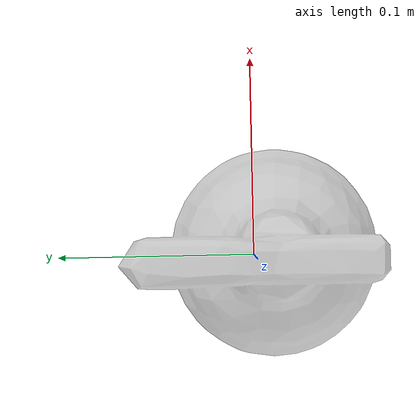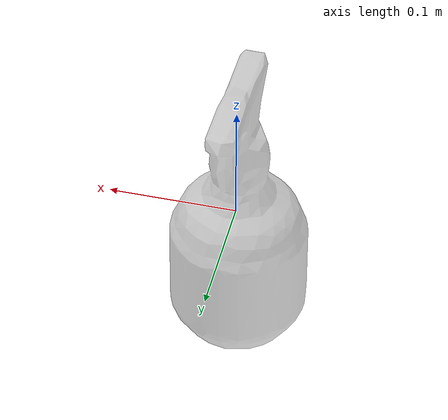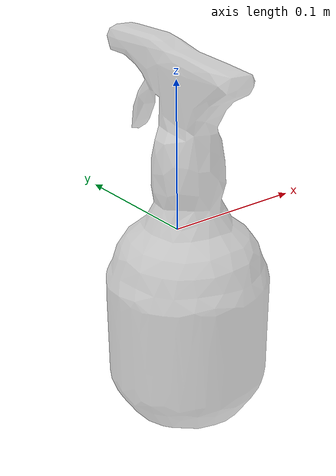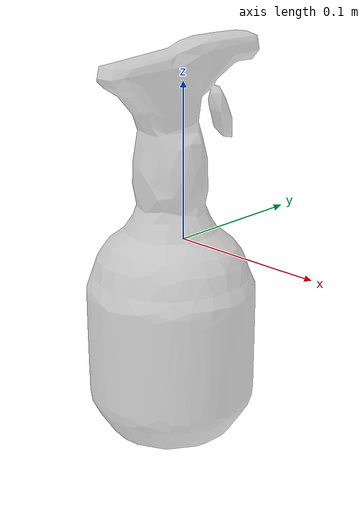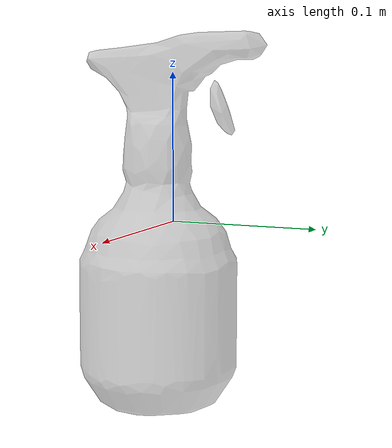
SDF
<?xml version='1.0'?>
<sdf version='1.4'>
  <model name="object">
    <link name='link'>
      <pose>0.0 0 0 0 0 0</pose>
      <inertial>
        <mass>0.75</mass>
        <inertia>
          <ixx>0.00290660713</ixx>
          <ixy>0</ixy>
          <ixz>0</ixz>
          <iyy>0.00286918918</iyy>
          <iyz>-0.00006919605</iyz>
          <izz>0.0009134465</izz>
        </inertia>
      </inertial>
      <collision name='c_bp_022'>
        <geometry>
          <mesh>
            <scale>1 1 1</scale>
            <uri>model://spray_bottle_poisson_001/mesh/spray_bottle_poisson_001.dae</uri>
          </mesh>
        </geometry>
        <surface>
          <contact>
            <ode>
              <kp>1000000</kp>
              <kd>100</kd>
              <max_vel>1000.0</max_vel>
              <min_depth>0.0</min_depth>
            </ode>
          </contact>
        </surface>
      </collision>

      <visual name='v_bp_022'>
        <geometry>
          <mesh>
            <scale>1 1 1</scale>
            <uri>model://spray_bottle_poisson_001/mesh/spray_bottle_poisson_001.dae</uri>
          </mesh>
        </geometry>
        <material>
          <script>
            <name>Gazebo/GreyTransparent</name>
            <uri>file://media/materials/scripts/gazebo.material</uri>
          </script>
        </material>
      </visual>

      <velocity_decay>
        <linear>0.0004</linear>
        <angular>0.0004</angular>
      </velocity_decay>
    </link>
  </model>
</sdf>
